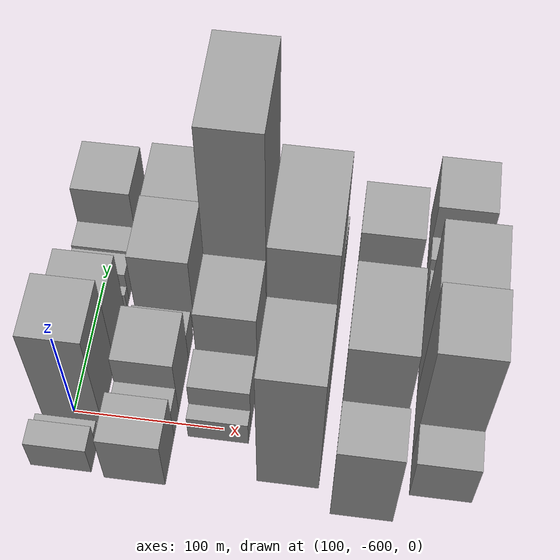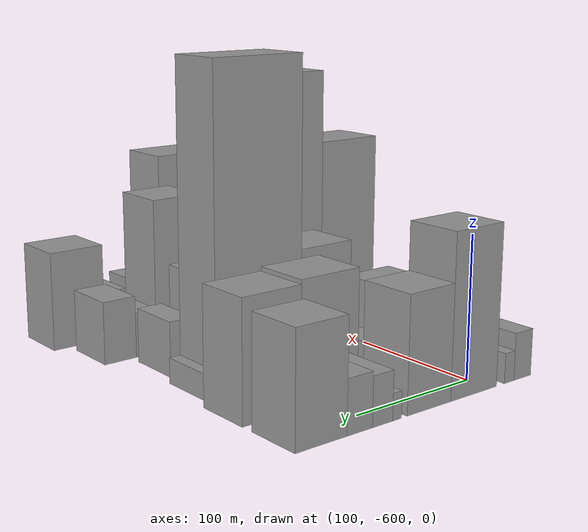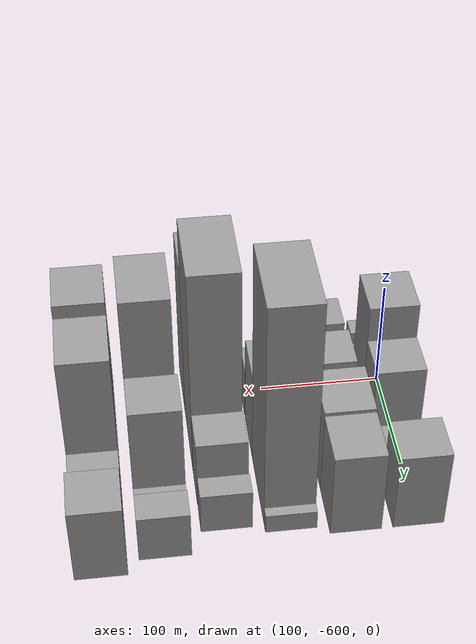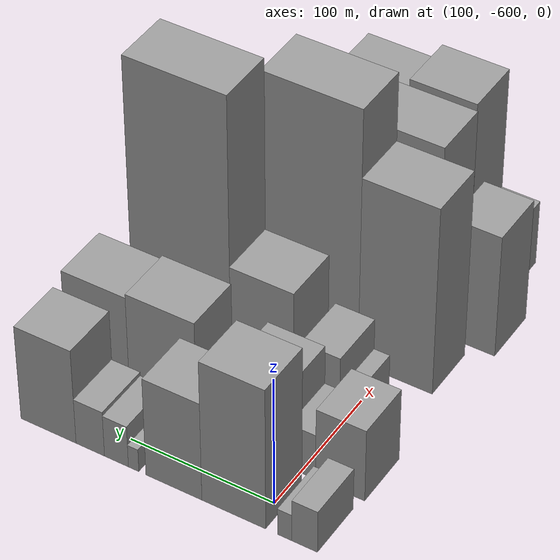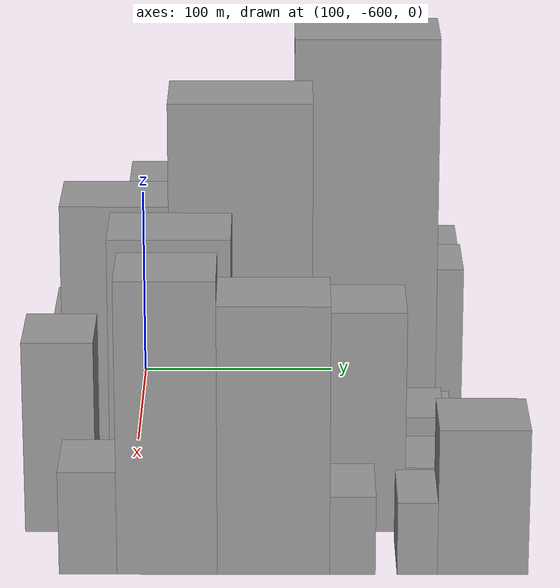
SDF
<sdf version="1.6">
 <world name="default">
  <model name="building_6">
   <static>1</static>
   <pose>100.0000 -632.6692 0 0.000000 0.000000 0.000000</pose>
   <link name="link">
    <pose>0 0 16.50 0 0 0</pose>
    <collision name="collision"><geometry><box><size>40.0000 17.2929 33.0000</size></box></geometry></collision>
    <visual name="visual">
     <cast_shadows>0</cast_shadows>
     <geometry><box><size>40.0000 17.2929 33.0000</size></box></geometry>
     <material>
      <script>
       <uri>model://grey_wall/materials/scripts</uri>
       <uri>model://grey_wall/materials/textures</uri>
       <name>vrc/grey_wall</name>
      </script>
     </material>
    </visual>
   </link>
  </model>
  <model name="building_7">
   <static>1</static>
   <pose>100.0000 -619.2423 0 0.000000 0.000000 0.000000</pose>
   <link name="link">
    <pose>0 0 10.50 0 0 0</pose>
    <collision name="collision"><geometry><box><size>40.0000 9.5608 21.0000</size></box></geometry></collision>
    <visual name="visual">
     <cast_shadows>0</cast_shadows>
     <geometry><box><size>40.0000 9.5608 21.0000</size></box></geometry>
     <material>
      <script>
       <uri>model://grey_wall/materials/scripts</uri>
       <uri>model://grey_wall/materials/textures</uri>
       <name>vrc/grey_wall</name>
      </script>
     </material>
    </visual>
   </link>
  </model>
  <model name="building_8">
   <static>1</static>
   <pose>100.0000 -584.6158 0 0.000000 0.000000 0.000000</pose>
   <link name="link">
    <pose>0 0 55.50 0 0 0</pose>
    <collision name="collision"><geometry><box><size>40.0000 43.6923 111.0000</size></box></geometry></collision>
    <visual name="visual">
     <cast_shadows>0</cast_shadows>
     <geometry><box><size>40.0000 43.6923 111.0000</size></box></geometry>
     <material>
      <script>
       <uri>model://grey_wall/materials/scripts</uri>
       <uri>model://grey_wall/materials/textures</uri>
       <name>vrc/grey_wall</name>
      </script>
     </material>
    </visual>
   </link>
  </model>
  <model name="building_9">
   <static>1</static>
   <pose>100.0000 -543.2670 0 0.000000 0.000000 0.000000</pose>
   <link name="link">
    <pose>0 0 39.00 0 0 0</pose>
    <collision name="collision"><geometry><box><size>40.0000 39.0051 78.0000</size></box></geometry></collision>
    <visual name="visual">
     <cast_shadows>0</cast_shadows>
     <geometry><box><size>40.0000 39.0051 78.0000</size></box></geometry>
     <material>
      <script>
       <uri>model://grey_wall/materials/scripts</uri>
       <uri>model://grey_wall/materials/textures</uri>
       <name>vrc/grey_wall</name>
      </script>
     </material>
    </visual>
   </link>
  </model>
  <model name="building_10">
   <static>1</static>
   <pose>100.0000 -515.0862 0 0.000000 0.000000 0.000000</pose>
   <link name="link">
    <pose>0 0 9.00 0 0 0</pose>
    <collision name="collision"><geometry><box><size>40.0000 7.3565 18.0000</size></box></geometry></collision>
    <visual name="visual">
     <cast_shadows>0</cast_shadows>
     <geometry><box><size>40.0000 7.3565 18.0000</size></box></geometry>
     <material>
      <script>
       <uri>model://grey_wall/materials/scripts</uri>
       <uri>model://grey_wall/materials/textures</uri>
       <name>vrc/grey_wall</name>
      </script>
     </material>
    </visual>
   </link>
  </model>
  <model name="building_11">
   <static>1</static>
   <pose>100.0000 -502.9198 0 0.000000 0.000000 0.000000</pose>
   <link name="link">
    <pose>0 0 16.50 0 0 0</pose>
    <collision name="collision"><geometry><box><size>40.0000 16.9764 33.0000</size></box></geometry></collision>
    <visual name="visual">
     <cast_shadows>0</cast_shadows>
     <geometry><box><size>40.0000 16.9764 33.0000</size></box></geometry>
     <material>
      <script>
       <uri>model://grey_wall/materials/scripts</uri>
       <uri>model://grey_wall/materials/textures</uri>
       <name>vrc/grey_wall</name>
      </script>
     </material>
    </visual>
   </link>
  </model>
  <model name="building_12">
   <static>1</static>
   <pose>100.0000 -484.2531 0 0.000000 0.000000 0.000000</pose>
   <link name="link">
    <pose>0 0 18.00 0 0 0</pose>
    <collision name="collision"><geometry><box><size>40.0000 20.3569 36.0000</size></box></geometry></collision>
    <visual name="visual">
     <cast_shadows>0</cast_shadows>
     <geometry><box><size>40.0000 20.3569 36.0000</size></box></geometry>
     <material>
      <script>
       <uri>model://grey_wall/materials/scripts</uri>
       <uri>model://grey_wall/materials/textures</uri>
       <name>vrc/grey_wall</name>
      </script>
     </material>
    </visual>
   </link>
  </model>
  <model name="building_13">
   <static>1</static>
   <pose>100.0000 -454.1229 0 0.000000 0.000000 0.000000</pose>
   <link name="link">
    <pose>0 0 37.50 0 0 0</pose>
    <collision name="collision"><geometry><box><size>40.0000 39.9035 75.0000</size></box></geometry></collision>
    <visual name="visual">
     <cast_shadows>0</cast_shadows>
     <geometry><box><size>40.0000 39.9035 75.0000</size></box></geometry>
     <material>
      <script>
       <uri>model://grey_wall/materials/scripts</uri>
       <uri>model://grey_wall/materials/textures</uri>
       <name>vrc/grey_wall</name>
      </script>
     </material>
    </visual>
   </link>
  </model>
  <model name="building_56">
   <static>1</static>
   <pose>149.0000 -627.0018 0 0.000000 0.000000 0.000000</pose>
   <link name="link">
    <pose>0 0 28.50 0 0 0</pose>
    <collision name="collision"><geometry><box><size>40.0000 33.4686 57.0000</size></box></geometry></collision>
    <visual name="visual">
     <cast_shadows>0</cast_shadows>
     <geometry><box><size>40.0000 33.4686 57.0000</size></box></geometry>
     <material>
      <script>
       <uri>model://grey_wall/materials/scripts</uri>
       <uri>model://grey_wall/materials/textures</uri>
       <name>vrc/grey_wall</name>
      </script>
     </material>
    </visual>
   </link>
  </model>
  <model name="building_57">
   <static>1</static>
   <pose>149.0000 -601.2485 0 0.000000 0.000000 0.000000</pose>
   <link name="link">
    <pose>0 0 18.00 0 0 0</pose>
    <collision name="collision"><geometry><box><size>40.0000 18.0380 36.0000</size></box></geometry></collision>
    <visual name="visual">
     <cast_shadows>0</cast_shadows>
     <geometry><box><size>40.0000 18.0380 36.0000</size></box></geometry>
     <material>
      <script>
       <uri>model://grey_wall/materials/scripts</uri>
       <uri>model://grey_wall/materials/textures</uri>
       <name>vrc/grey_wall</name>
      </script>
     </material>
    </visual>
   </link>
  </model>
  <model name="building_58">
   <static>1</static>
   <pose>149.0000 -572.6201 0 0.000000 0.000000 0.000000</pose>
   <link name="link">
    <pose>0 0 33.00 0 0 0</pose>
    <collision name="collision"><geometry><box><size>40.0000 39.2188 66.0000</size></box></geometry></collision>
    <visual name="visual">
     <cast_shadows>0</cast_shadows>
     <geometry><box><size>40.0000 39.2188 66.0000</size></box></geometry>
     <material>
      <script>
       <uri>model://grey_wall/materials/scripts</uri>
       <uri>model://grey_wall/materials/textures</uri>
       <name>vrc/grey_wall</name>
      </script>
     </material>
    </visual>
   </link>
  </model>
  <model name="building_59">
   <static>1</static>
   <pose>149.0000 -543.3109 0 0.000000 0.000000 0.000000</pose>
   <link name="link">
    <pose>0 0 16.50 0 0 0</pose>
    <collision name="collision"><geometry><box><size>40.0000 19.3997 33.0000</size></box></geometry></collision>
    <visual name="visual">
     <cast_shadows>0</cast_shadows>
     <geometry><box><size>40.0000 19.3997 33.0000</size></box></geometry>
     <material>
      <script>
       <uri>model://grey_wall/materials/scripts</uri>
       <uri>model://grey_wall/materials/textures</uri>
       <name>vrc/grey_wall</name>
      </script>
     </material>
    </visual>
   </link>
  </model>
  <model name="building_60">
   <static>1</static>
   <pose>149.0000 -503.5934 0 0.000000 0.000000 0.000000</pose>
   <link name="link">
    <pose>0 0 42.00 0 0 0</pose>
    <collision name="collision"><geometry><box><size>40.0000 48.0353 84.0000</size></box></geometry></collision>
    <visual name="visual">
     <cast_shadows>0</cast_shadows>
     <geometry><box><size>40.0000 48.0353 84.0000</size></box></geometry>
     <material>
      <script>
       <uri>model://grey_wall/materials/scripts</uri>
       <uri>model://grey_wall/materials/textures</uri>
       <name>vrc/grey_wall</name>
      </script>
     </material>
    </visual>
   </link>
  </model>
  <model name="building_61">
   <static>1</static>
   <pose>149.0000 -456.7416 0 0.000000 0.000000 0.000000</pose>
   <link name="link">
    <pose>0 0 40.50 0 0 0</pose>
    <collision name="collision"><geometry><box><size>40.0000 45.6681 81.0000</size></box></geometry></collision>
    <visual name="visual">
     <cast_shadows>0</cast_shadows>
     <geometry><box><size>40.0000 45.6681 81.0000</size></box></geometry>
     <material>
      <script>
       <uri>model://grey_wall/materials/scripts</uri>
       <uri>model://grey_wall/materials/textures</uri>
       <name>vrc/grey_wall</name>
      </script>
     </material>
    </visual>
   </link>
  </model>
  <model name="building_102">
   <static>1</static>
   <pose>198.0000 -602.7973 0 0.000000 0.000000 0.000000</pose>
   <link name="link">
    <pose>0 0 13.50 0 0 0</pose>
    <collision name="collision"><geometry><box><size>40.0000 10.9395 27.0000</size></box></geometry></collision>
    <visual name="visual">
     <cast_shadows>0</cast_shadows>
     <geometry><box><size>40.0000 10.9395 27.0000</size></box></geometry>
     <material>
      <script>
       <uri>model://grey_wall/materials/scripts</uri>
       <uri>model://grey_wall/materials/textures</uri>
       <name>vrc/grey_wall</name>
      </script>
     </material>
    </visual>
   </link>
  </model>
  <model name="building_103">
   <static>1</static>
   <pose>198.0000 -583.7330 0 0.000000 0.000000 0.000000</pose>
   <link name="link">
    <pose>0 0 25.50 0 0 0</pose>
    <collision name="collision"><geometry><box><size>40.0000 27.1892 51.0000</size></box></geometry></collision>
    <visual name="visual">
     <cast_shadows>0</cast_shadows>
     <geometry><box><size>40.0000 27.1892 51.0000</size></box></geometry>
     <material>
      <script>
       <uri>model://grey_wall/materials/scripts</uri>
       <uri>model://grey_wall/materials/textures</uri>
       <name>vrc/grey_wall</name>
      </script>
     </material>
    </visual>
   </link>
  </model>
  <model name="building_104">
   <static>1</static>
   <pose>198.0000 -542.9168 0 0.000000 0.000000 0.000000</pose>
   <link name="link">
    <pose>0 0 43.50 0 0 0</pose>
    <collision name="collision"><geometry><box><size>40.0000 44.4431 87.0000</size></box></geometry></collision>
    <visual name="visual">
     <cast_shadows>0</cast_shadows>
     <geometry><box><size>40.0000 44.4431 87.0000</size></box></geometry>
     <material>
      <script>
       <uri>model://grey_wall/materials/scripts</uri>
       <uri>model://grey_wall/materials/textures</uri>
       <name>vrc/grey_wall</name>
      </script>
     </material>
    </visual>
   </link>
  </model>
  <model name="building_105">
   <static>1</static>
   <pose>198.0000 -485.2934 0 0.000000 0.000000 0.000000</pose>
   <link name="link">
    <pose>0 0 108.00 0 0 0</pose>
    <collision name="collision"><geometry><box><size>40.0000 70.8036 216.0000</size></box></geometry></collision>
    <visual name="visual">
     <cast_shadows>0</cast_shadows>
     <geometry><box><size>40.0000 70.8036 216.0000</size></box></geometry>
     <material>
      <script>
       <uri>model://grey_wall/materials/scripts</uri>
       <uri>model://grey_wall/materials/textures</uri>
       <name>vrc/grey_wall</name>
      </script>
     </material>
    </visual>
   </link>
  </model>
  <model name="building_106">
   <static>1</static>
   <pose>198.0000 -445.4952 0 0.000000 0.000000 0.000000</pose>
   <link name="link">
    <pose>0 0 9.00 0 0 0</pose>
    <collision name="collision"><geometry><box><size>40.0000 8.7928 18.0000</size></box></geometry></collision>
    <visual name="visual">
     <cast_shadows>0</cast_shadows>
     <geometry><box><size>40.0000 8.7928 18.0000</size></box></geometry>
     <material>
      <script>
       <uri>model://grey_wall/materials/scripts</uri>
       <uri>model://grey_wall/materials/textures</uri>
       <name>vrc/grey_wall</name>
      </script>
     </material>
    </visual>
   </link>
  </model>
  <model name="building_151">
   <static>1</static>
   <pose>247.0000 -607.2660 0 0.000000 0.000000 0.000000</pose>
   <link name="link">
    <pose>0 0 73.50 0 0 0</pose>
    <collision name="collision"><geometry><box><size>40.0000 52.0270 147.0000</size></box></geometry></collision>
    <visual name="visual">
     <cast_shadows>0</cast_shadows>
     <geometry><box><size>40.0000 52.0270 147.0000</size></box></geometry>
     <material>
      <script>
       <uri>model://grey_wall/materials/scripts</uri>
       <uri>model://grey_wall/materials/textures</uri>
       <name>vrc/grey_wall</name>
      </script>
     </material>
    </visual>
   </link>
  </model>
  <model name="building_152">
   <static>1</static>
   <pose>247.0000 -546.7218 0 0.000000 0.000000 0.000000</pose>
   <link name="link">
    <pose>0 0 99.00 0 0 0</pose>
    <collision name="collision"><geometry><box><size>40.0000 69.0615 198.0000</size></box></geometry></collision>
    <visual name="visual">
     <cast_shadows>0</cast_shadows>
     <geometry><box><size>40.0000 69.0615 198.0000</size></box></geometry>
     <material>
      <script>
       <uri>model://grey_wall/materials/scripts</uri>
       <uri>model://grey_wall/materials/textures</uri>
       <name>vrc/grey_wall</name>
      </script>
     </material>
    </visual>
   </link>
  </model>
  <model name="building_153">
   <static>1</static>
   <pose>247.0000 -491.3449 0 0.000000 0.000000 0.000000</pose>
   <link name="link">
    <pose>0 0 33.00 0 0 0</pose>
    <collision name="collision"><geometry><box><size>40.0000 33.6923 66.0000</size></box></geometry></collision>
    <visual name="visual">
     <cast_shadows>0</cast_shadows>
     <geometry><box><size>40.0000 33.6923 66.0000</size></box></geometry>
     <material>
      <script>
       <uri>model://grey_wall/materials/scripts</uri>
       <uri>model://grey_wall/materials/textures</uri>
       <name>vrc/grey_wall</name>
      </script>
     </material>
    </visual>
   </link>
  </model>
  <model name="building_154">
   <static>1</static>
   <pose>247.0000 -457.6352 0 0.000000 0.000000 0.000000</pose>
   <link name="link">
    <pose>0 0 19.50 0 0 0</pose>
    <collision name="collision"><geometry><box><size>40.0000 19.7271 39.0000</size></box></geometry></collision>
    <visual name="visual">
     <cast_shadows>0</cast_shadows>
     <geometry><box><size>40.0000 19.7271 39.0000</size></box></geometry>
     <material>
      <script>
       <uri>model://grey_wall/materials/scripts</uri>
       <uri>model://grey_wall/materials/textures</uri>
       <name>vrc/grey_wall</name>
      </script>
     </material>
    </visual>
   </link>
  </model>
  <model name="building_196">
   <static>1</static>
   <pose>296.0000 -632.4021 0 0.000000 0.000000 0.000000</pose>
   <link name="link">
    <pose>0 0 48.00 0 0 0</pose>
    <collision name="collision"><geometry><box><size>40.0000 33.8480 96.0000</size></box></geometry></collision>
    <visual name="visual">
     <cast_shadows>0</cast_shadows>
     <geometry><box><size>40.0000 33.8480 96.0000</size></box></geometry>
     <material>
      <script>
       <uri>model://grey_wall/materials/scripts</uri>
       <uri>model://grey_wall/materials/textures</uri>
       <name>vrc/grey_wall</name>
      </script>
     </material>
    </visual>
   </link>
  </model>
  <model name="building_197">
   <static>1</static>
   <pose>296.0000 -579.5757 0 0.000000 0.000000 0.000000</pose>
   <link name="link">
    <pose>0 0 73.50 0 0 0</pose>
    <collision name="collision"><geometry><box><size>40.0000 57.8050 147.0000</size></box></geometry></collision>
    <visual name="visual">
     <cast_shadows>0</cast_shadows>
     <geometry><box><size>40.0000 57.8050 147.0000</size></box></geometry>
     <material>
      <script>
       <uri>model://grey_wall/materials/scripts</uri>
       <uri>model://grey_wall/materials/textures</uri>
       <name>vrc/grey_wall</name>
      </script>
     </material>
    </visual>
   </link>
  </model>
  <model name="building_198">
   <static>1</static>
   <pose>296.0000 -533.1727 0 0.000000 0.000000 0.000000</pose>
   <link name="link">
    <pose>0 0 34.50 0 0 0</pose>
    <collision name="collision"><geometry><box><size>40.0000 35.0010 69.0000</size></box></geometry></collision>
    <visual name="visual">
     <cast_shadows>0</cast_shadows>
     <geometry><box><size>40.0000 35.0010 69.0000</size></box></geometry>
     <material>
      <script>
       <uri>model://grey_wall/materials/scripts</uri>
       <uri>model://grey_wall/materials/textures</uri>
       <name>vrc/grey_wall</name>
      </script>
     </material>
    </visual>
   </link>
  </model>
  <model name="building_199">
   <static>1</static>
   <pose>296.0000 -487.9956 0 0.000000 0.000000 0.000000</pose>
   <link name="link">
    <pose>0 0 55.50 0 0 0</pose>
    <collision name="collision"><geometry><box><size>40.0000 39.3532 111.0000</size></box></geometry></collision>
    <visual name="visual">
     <cast_shadows>0</cast_shadows>
     <geometry><box><size>40.0000 39.3532 111.0000</size></box></geometry>
     <material>
      <script>
       <uri>model://grey_wall/materials/scripts</uri>
       <uri>model://grey_wall/materials/textures</uri>
       <name>vrc/grey_wall</name>
      </script>
     </material>
    </visual>
   </link>
  </model>
  <model name="building_200">
   <static>1</static>
   <pose>296.0000 -459.9178 0 0.000000 0.000000 0.000000</pose>
   <link name="link">
    <pose>0 0 16.50 0 0 0</pose>
    <collision name="collision"><geometry><box><size>40.0000 16.8024 33.0000</size></box></geometry></collision>
    <visual name="visual">
     <cast_shadows>0</cast_shadows>
     <geometry><box><size>40.0000 16.8024 33.0000</size></box></geometry>
     <material>
      <script>
       <uri>model://grey_wall/materials/scripts</uri>
       <uri>model://grey_wall/materials/textures</uri>
       <name>vrc/grey_wall</name>
      </script>
     </material>
    </visual>
   </link>
  </model>
  <model name="building_201">
   <static>1</static>
   <pose>296.0000 -438.7414 0 0.000000 0.000000 0.000000</pose>
   <link name="link">
    <pose>0 0 22.50 0 0 0</pose>
    <collision name="collision"><geometry><box><size>40.0000 25.5503 45.0000</size></box></geometry></collision>
    <visual name="visual">
     <cast_shadows>0</cast_shadows>
     <geometry><box><size>40.0000 25.5503 45.0000</size></box></geometry>
     <material>
      <script>
       <uri>model://grey_wall/materials/scripts</uri>
       <uri>model://grey_wall/materials/textures</uri>
       <name>vrc/grey_wall</name>
      </script>
     </material>
    </visual>
   </link>
  </model>
  <model name="building_245">
   <static>1</static>
   <pose>345.0000 -616.7638 0 0.000000 0.000000 0.000000</pose>
   <link name="link">
    <pose>0 0 25.50 0 0 0</pose>
    <collision name="collision"><geometry><box><size>40.0000 26.8294 51.0000</size></box></geometry></collision>
    <visual name="visual">
     <cast_shadows>0</cast_shadows>
     <geometry><box><size>40.0000 26.8294 51.0000</size></box></geometry>
     <material>
      <script>
       <uri>model://grey_wall/materials/scripts</uri>
       <uri>model://grey_wall/materials/textures</uri>
       <name>vrc/grey_wall</name>
      </script>
     </material>
    </visual>
   </link>
  </model>
  <model name="building_246">
   <static>1</static>
   <pose>345.0000 -580.0972 0 0.000000 0.000000 0.000000</pose>
   <link name="link">
    <pose>0 0 72.00 0 0 0</pose>
    <collision name="collision"><geometry><box><size>40.0000 46.5039 144.0000</size></box></geometry></collision>
    <visual name="visual">
     <cast_shadows>0</cast_shadows>
     <geometry><box><size>40.0000 46.5039 144.0000</size></box></geometry>
     <material>
      <script>
       <uri>model://grey_wall/materials/scripts</uri>
       <uri>model://grey_wall/materials/textures</uri>
       <name>vrc/grey_wall</name>
      </script>
     </material>
    </visual>
   </link>
  </model>
  <model name="building_247">
   <static>1</static>
   <pose>345.0000 -530.8463 0 0.000000 0.000000 0.000000</pose>
   <link name="link">
    <pose>0 0 66.00 0 0 0</pose>
    <collision name="collision"><geometry><box><size>40.0000 51.9978 132.0000</size></box></geometry></collision>
    <visual name="visual">
     <cast_shadows>0</cast_shadows>
     <geometry><box><size>40.0000 51.9978 132.0000</size></box></geometry>
     <material>
      <script>
       <uri>model://grey_wall/materials/scripts</uri>
       <uri>model://grey_wall/materials/textures</uri>
       <name>vrc/grey_wall</name>
      </script>
     </material>
    </visual>
   </link>
  </model>
  <model name="building_248">
   <static>1</static>
   <pose>345.0000 -494.2153 0 0.000000 0.000000 0.000000</pose>
   <link name="link">
    <pose>0 0 19.50 0 0 0</pose>
    <collision name="collision"><geometry><box><size>40.0000 21.2642 39.0000</size></box></geometry></collision>
    <visual name="visual">
     <cast_shadows>0</cast_shadows>
     <geometry><box><size>40.0000 21.2642 39.0000</size></box></geometry>
     <material>
      <script>
       <uri>model://grey_wall/materials/scripts</uri>
       <uri>model://grey_wall/materials/textures</uri>
       <name>vrc/grey_wall</name>
      </script>
     </material>
    </visual>
   </link>
  </model>
  <model name="building_249">
   <static>1</static>
   <pose>345.0000 -464.2381 0 0.000000 0.000000 0.000000</pose>
   <link name="link">
    <pose>0 0 18.00 0 0 0</pose>
    <collision name="collision"><geometry><box><size>40.0000 18.6902 36.0000</size></box></geometry></collision>
    <visual name="visual">
     <cast_shadows>0</cast_shadows>
     <geometry><box><size>40.0000 18.6902 36.0000</size></box></geometry>
     <material>
      <script>
       <uri>model://grey_wall/materials/scripts</uri>
       <uri>model://grey_wall/materials/textures</uri>
       <name>vrc/grey_wall</name>
      </script>
     </material>
    </visual>
   </link>
  </model>
  <model name="building_250">
   <static>1</static>
   <pose>345.0000 -433.8771 0 0.000000 0.000000 0.000000</pose>
   <link name="link">
    <pose>0 0 36.00 0 0 0</pose>
    <collision name="collision"><geometry><box><size>40.0000 42.0316 72.0000</size></box></geometry></collision>
    <visual name="visual">
     <cast_shadows>0</cast_shadows>
     <geometry><box><size>40.0000 42.0316 72.0000</size></box></geometry>
     <material>
      <script>
       <uri>model://grey_wall/materials/scripts</uri>
       <uri>model://grey_wall/materials/textures</uri>
       <name>vrc/grey_wall</name>
      </script>
     </material>
    </visual>
   </link>
  </model>
 </world>
</sdf>
